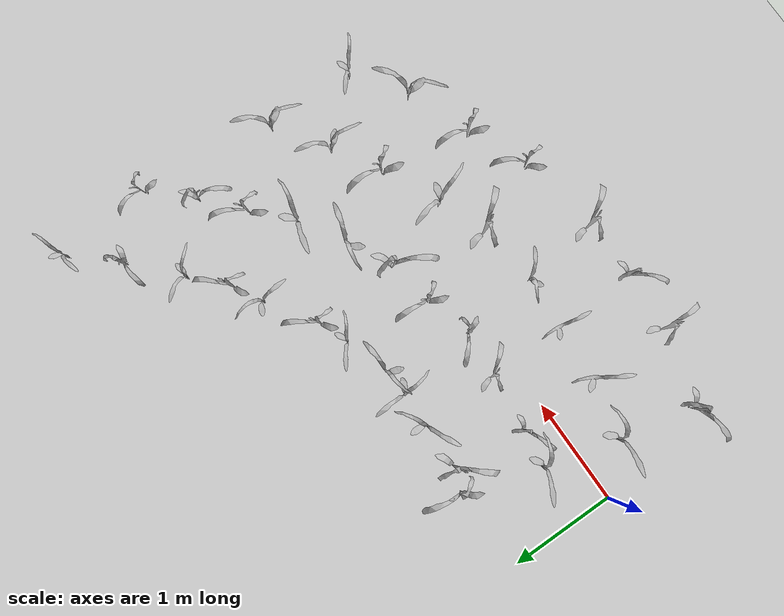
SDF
<sdf version="1.6">
 <world name="default">
  <model name="ground_plane">
   <static>1</static>
   <link name="link">
    <collision name="collision">
     <geometry><plane><normal>0 0 1</normal><size>100 100</size></plane></geometry>
     <surface>
      <contact><collide_bitmask>65535</collide_bitmask></contact>
      <friction><ode><mu>100</mu><mu2>50</mu2></ode></friction>
     </surface>
    </collision>
    <visual name="visual">
     <cast_shadows>0</cast_shadows>
     <geometry><plane><normal>0 0 1</normal><size>100 100</size></plane></geometry>
     <material>
      <script><uri>file://media/materials/scripts/gazebo.material</uri><name>Gazebo/Grey</name></script>
     </material>
    </visual>
   </link>
  </model>
  <model name="maize_02_0000">
   <pose>0.5852653367917549 0.3318975245804875 0.05 0 -0 4.819137196691981</pose>
   <link name="maize_02_0000_link">
    <inertial>
     <mass>5.0</mass>
     <inertia>
      <ixx>0.0033416667</ixx>
      <ixy>0</ixy>
      <ixz>0</ixz>
      <iyy>0.0033416667</iyy>
      <iyz>0</iyz>
      <izz>0.000016666667</izz>
     </inertia>
     <pose>0 0 0.1 0 0 0</pose>
    </inertial>
    <collision name="collision">
     <pose>0 0 0.2 0 -0 0</pose>
     <geometry><box><size>0.02 0.02 0.4</size></box></geometry>
     <surface><friction><ode><mu>10</mu><mu2>10</mu2></ode></friction></surface>
    </collision>
    <visual name="visual">
     <geometry>
      <mesh>
       <uri>model://maize_02/meshes/maize_02.dae</uri>
       <scale>0.6198655844902619 0.6198655844902619 0.6198655844902619</scale>
      </mesh>
     </geometry>
    </visual>
   </link>
  </model>
  <model name="maize_01_0001">
   <pose>0.819224740678983 1.0473308832072175 0.05 0 -0 2.1558350622808797</pose>
   <link name="maize_01_0001_link">
    <inertial>
     <mass>5.0</mass>
     <inertia>
      <ixx>0.0033416667</ixx>
      <ixy>0</ixy>
      <ixz>0</ixz>
      <iyy>0.0033416667</iyy>
      <iyz>0</iyz>
      <izz>0.000016666667</izz>
     </inertia>
     <pose>0 0 0.1 0 0 0</pose>
    </inertial>
    <collision name="collision">
     <pose>0 0 0.2 0 -0 0</pose>
     <geometry><box><size>0.02 0.02 0.4</size></box></geometry>
     <surface><friction><ode><mu>10</mu><mu2>10</mu2></ode></friction></surface>
    </collision>
    <visual name="visual">
     <geometry>
      <mesh>
       <uri>model://maize_01/meshes/maize_01.dae</uri>
       <scale>0.6231910097683236 0.6231910097683236 0.6231910097683236</scale>
      </mesh>
     </geometry>
    </visual>
   </link>
  </model>
  <model name="maize_02_0002">
   <pose>0.40558978321978284 -0.34852179317750154 0.05 0 -0 5.124807641884314</pose>
   <link name="maize_02_0002_link">
    <inertial>
     <mass>5.0</mass>
     <inertia>
      <ixx>0.0033416667</ixx>
      <ixy>0</ixy>
      <ixz>0</ixz>
      <iyy>0.0033416667</iyy>
      <iyz>0</iyz>
      <izz>0.000016666667</izz>
     </inertia>
     <pose>0 0 0.1 0 0 0</pose>
    </inertial>
    <collision name="collision">
     <pose>0 0 0.2 0 -0 0</pose>
     <geometry><box><size>0.02 0.02 0.4</size></box></geometry>
     <surface><friction><ode><mu>10</mu><mu2>10</mu2></ode></friction></surface>
    </collision>
    <visual name="visual">
     <geometry>
      <mesh>
       <uri>model://maize_02/meshes/maize_02.dae</uri>
       <scale>0.6528116234078092 0.6528116234078092 0.6528116234078092</scale>
      </mesh>
     </geometry>
    </visual>
   </link>
  </model>
  <model name="maize_01_0003">
   <pose>0.24168280885078264 -1.0580865629336622 0.05 0 -0 3.9816687229967505</pose>
   <link name="maize_01_0003_link">
    <inertial>
     <mass>5.0</mass>
     <inertia>
      <ixx>0.0033416667</ixx>
      <ixy>0</ixy>
      <ixz>0</ixz>
      <iyy>0.0033416667</iyy>
      <iyz>0</iyz>
      <izz>0.000016666667</izz>
     </inertia>
     <pose>0 0 0.1 0 0 0</pose>
    </inertial>
    <collision name="collision">
     <pose>0 0 0.2 0 -0 0</pose>
     <geometry><box><size>0.02 0.02 0.4</size></box></geometry>
     <surface><friction><ode><mu>10</mu><mu2>10</mu2></ode></friction></surface>
    </collision>
    <visual name="visual">
     <geometry>
      <mesh>
       <uri>model://maize_01/meshes/maize_01.dae</uri>
       <scale>0.6133527399428998 0.6133527399428998 0.6133527399428998</scale>
      </mesh>
     </geometry>
    </visual>
   </link>
  </model>
  <model name="maize_01_0004">
   <pose>0.9390161218849827 0.2778658560384204 0.05 0 -0 4.271016923427325</pose>
   <link name="maize_01_0004_link">
    <inertial>
     <mass>5.0</mass>
     <inertia>
      <ixx>0.0033416667</ixx>
      <ixy>0</ixy>
      <ixz>0</ixz>
      <iyy>0.0033416667</iyy>
      <iyz>0</iyz>
      <izz>0.000016666667</izz>
     </inertia>
     <pose>0 0 0.1 0 0 0</pose>
    </inertial>
    <collision name="collision">
     <pose>0 0 0.2 0 -0 0</pose>
     <geometry><box><size>0.02 0.02 0.4</size></box></geometry>
     <surface><friction><ode><mu>10</mu><mu2>10</mu2></ode></friction></surface>
    </collision>
    <visual name="visual">
     <geometry>
      <mesh>
       <uri>model://maize_01/meshes/maize_01.dae</uri>
       <scale>0.5013892831783784 0.5013892831783784 0.5013892831783784</scale>
      </mesh>
     </geometry>
    </visual>
   </link>
  </model>
  <model name="maize_01_0005">
   <pose>1.0433240931990193 0.9779338062818309 0.05 0 -0 4.773157440183226</pose>
   <link name="maize_01_0005_link">
    <inertial>
     <mass>5.0</mass>
     <inertia>
      <ixx>0.0033416667</ixx>
      <ixy>0</ixy>
      <ixz>0</ixz>
      <iyy>0.0033416667</iyy>
      <iyz>0</iyz>
      <izz>0.000016666667</izz>
     </inertia>
     <pose>0 0 0.1 0 0 0</pose>
    </inertial>
    <collision name="collision">
     <pose>0 0 0.2 0 -0 0</pose>
     <geometry><box><size>0.02 0.02 0.4</size></box></geometry>
     <surface><friction><ode><mu>10</mu><mu2>10</mu2></ode></friction></surface>
    </collision>
    <visual name="visual">
     <geometry>
      <mesh>
       <uri>model://maize_01/meshes/maize_01.dae</uri>
       <scale>0.6386361690071659 0.6386361690071659 0.6386361690071659</scale>
      </mesh>
     </geometry>
    </visual>
   </link>
  </model>
  <model name="maize_02_0006">
   <pose>0.9435436977935228 -0.5009072258348778 0.05 0 -0 0.07977521289463807</pose>
   <link name="maize_02_0006_link">
    <inertial>
     <mass>5.0</mass>
     <inertia>
      <ixx>0.0033416667</ixx>
      <ixy>0</ixy>
      <ixz>0</ixz>
      <iyy>0.0033416667</iyy>
      <iyz>0</iyz>
      <izz>0.000016666667</izz>
     </inertia>
     <pose>0 0 0.1 0 0 0</pose>
    </inertial>
    <collision name="collision">
     <pose>0 0 0.2 0 -0 0</pose>
     <geometry><box><size>0.02 0.02 0.4</size></box></geometry>
     <surface><friction><ode><mu>10</mu><mu2>10</mu2></ode></friction></surface>
    </collision>
    <visual name="visual">
     <geometry>
      <mesh>
       <uri>model://maize_02/meshes/maize_02.dae</uri>
       <scale>0.5684113326045124 0.5684113326045124 0.5684113326045124</scale>
      </mesh>
     </geometry>
    </visual>
   </link>
  </model>
  <model name="maize_01_0007">
   <pose>0.9520983835941816 -1.2447676150098879 0.05 0 -0 5.541592673597331</pose>
   <link name="maize_01_0007_link">
    <inertial>
     <mass>5.0</mass>
     <inertia>
      <ixx>0.0033416667</ixx>
      <ixy>0</ixy>
      <ixz>0</ixz>
      <iyy>0.0033416667</iyy>
      <iyz>0</iyz>
      <izz>0.000016666667</izz>
     </inertia>
     <pose>0 0 0.1 0 0 0</pose>
    </inertial>
    <collision name="collision">
     <pose>0 0 0.2 0 -0 0</pose>
     <geometry><box><size>0.02 0.02 0.4</size></box></geometry>
     <surface><friction><ode><mu>10</mu><mu2>10</mu2></ode></friction></surface>
    </collision>
    <visual name="visual">
     <geometry>
      <mesh>
       <uri>model://maize_01/meshes/maize_01.dae</uri>
       <scale>0.5812379114549232 0.5812379114549232 0.5812379114549232</scale>
      </mesh>
     </geometry>
    </visual>
   </link>
  </model>
  <model name="maize_01_0008">
   <pose>1.4710803604021425 0.251955824354667 0.05 0 -0 6.238931316800727</pose>
   <link name="maize_01_0008_link">
    <inertial>
     <mass>5.0</mass>
     <inertia>
      <ixx>0.0033416667</ixx>
      <ixy>0</ixy>
      <ixz>0</ixz>
      <iyy>0.0033416667</iyy>
      <iyz>0</iyz>
      <izz>0.000016666667</izz>
     </inertia>
     <pose>0 0 0.1 0 0 0</pose>
    </inertial>
    <collision name="collision">
     <pose>0 0 0.2 0 -0 0</pose>
     <geometry><box><size>0.02 0.02 0.4</size></box></geometry>
     <surface><friction><ode><mu>10</mu><mu2>10</mu2></ode></friction></surface>
    </collision>
    <visual name="visual">
     <geometry>
      <mesh>
       <uri>model://maize_01/meshes/maize_01.dae</uri>
       <scale>0.5223644311173579 0.5223644311173579 0.5223644311173579</scale>
      </mesh>
     </geometry>
    </visual>
   </link>
  </model>
  <model name="maize_02_0009">
   <pose>1.4540257556802145 0.9679712613130649 0.05 0 -0 5.768217206137263</pose>
   <link name="maize_02_0009_link">
    <inertial>
     <mass>5.0</mass>
     <inertia>
      <ixx>0.0033416667</ixx>
      <ixy>0</ixy>
      <ixz>0</ixz>
      <iyy>0.0033416667</iyy>
      <iyz>0</iyz>
      <izz>0.000016666667</izz>
     </inertia>
     <pose>0 0 0.1 0 0 0</pose>
    </inertial>
    <collision name="collision">
     <pose>0 0 0.2 0 -0 0</pose>
     <geometry><box><size>0.02 0.02 0.4</size></box></geometry>
     <surface><friction><ode><mu>10</mu><mu2>10</mu2></ode></friction></surface>
    </collision>
    <visual name="visual">
     <geometry>
      <mesh>
       <uri>model://maize_02/meshes/maize_02.dae</uri>
       <scale>0.6155631847034542 0.6155631847034542 0.6155631847034542</scale>
      </mesh>
     </geometry>
    </visual>
   </link>
  </model>
  <model name="maize_02_0010">
   <pose>1.4918015879454176 -0.5199005328881918 0.05 0 -0 0.46721395192465426</pose>
   <link name="maize_02_0010_link">
    <inertial>
     <mass>5.0</mass>
     <inertia>
      <ixx>0.0033416667</ixx>
      <ixy>0</ixy>
      <ixz>0</ixz>
      <iyy>0.0033416667</iyy>
      <iyz>0</iyz>
      <izz>0.000016666667</izz>
     </inertia>
     <pose>0 0 0.1 0 0 0</pose>
    </inertial>
    <collision name="collision">
     <pose>0 0 0.2 0 -0 0</pose>
     <geometry><box><size>0.02 0.02 0.4</size></box></geometry>
     <surface><friction><ode><mu>10</mu><mu2>10</mu2></ode></friction></surface>
    </collision>
    <visual name="visual">
     <geometry>
      <mesh>
       <uri>model://maize_02/meshes/maize_02.dae</uri>
       <scale>0.5000797023428499 0.5000797023428499 0.5000797023428499</scale>
      </mesh>
     </geometry>
    </visual>
   </link>
  </model>
  <model name="maize_01_0011">
   <pose>1.515319801560635 -1.2987714635864087 0.05 0 -0 4.596360872219469</pose>
   <link name="maize_01_0011_link">
    <inertial>
     <mass>5.0</mass>
     <inertia>
      <ixx>0.0033416667</ixx>
      <ixy>0</ixy>
      <ixz>0</ixz>
      <iyy>0.0033416667</iyy>
      <iyz>0</iyz>
      <izz>0.000016666667</izz>
     </inertia>
     <pose>0 0 0.1 0 0 0</pose>
    </inertial>
    <collision name="collision">
     <pose>0 0 0.2 0 -0 0</pose>
     <geometry><box><size>0.02 0.02 0.4</size></box></geometry>
     <surface><friction><ode><mu>10</mu><mu2>10</mu2></ode></friction></surface>
    </collision>
    <visual name="visual">
     <geometry>
      <mesh>
       <uri>model://maize_01/meshes/maize_01.dae</uri>
       <scale>0.5441755178383955 0.5441755178383955 0.5441755178383955</scale>
      </mesh>
     </geometry>
    </visual>
   </link>
  </model>
  <model name="maize_01_0012">
   <pose>1.9238771021630594 0.1877942131749205 0.05 0 -0 3.1945023329080233</pose>
   <link name="maize_01_0012_link">
    <inertial>
     <mass>5.0</mass>
     <inertia>
      <ixx>0.0033416667</ixx>
      <ixy>0</ixy>
      <ixz>0</ixz>
      <iyy>0.0033416667</iyy>
      <iyz>0</iyz>
      <izz>0.000016666667</izz>
     </inertia>
     <pose>0 0 0.1 0 0 0</pose>
    </inertial>
    <collision name="collision">
     <pose>0 0 0.2 0 -0 0</pose>
     <geometry><box><size>0.02 0.02 0.4</size></box></geometry>
     <surface><friction><ode><mu>10</mu><mu2>10</mu2></ode></friction></surface>
    </collision>
    <visual name="visual">
     <geometry>
      <mesh>
       <uri>model://maize_01/meshes/maize_01.dae</uri>
       <scale>0.5189079695927395 0.5189079695927395 0.5189079695927395</scale>
      </mesh>
     </geometry>
    </visual>
   </link>
  </model>
  <model name="maize_02_0013">
   <pose>1.796037262723127 0.9823309842579532 0.05 0 -0 3.8167087248394163</pose>
   <link name="maize_02_0013_link">
    <inertial>
     <mass>5.0</mass>
     <inertia>
      <ixx>0.0033416667</ixx>
      <ixy>0</ixy>
      <ixz>0</ixz>
      <iyy>0.0033416667</iyy>
      <iyz>0</iyz>
      <izz>0.000016666667</izz>
     </inertia>
     <pose>0 0 0.1 0 0 0</pose>
    </inertial>
    <collision name="collision">
     <pose>0 0 0.2 0 -0 0</pose>
     <geometry><box><size>0.02 0.02 0.4</size></box></geometry>
     <surface><friction><ode><mu>10</mu><mu2>10</mu2></ode></friction></surface>
    </collision>
    <visual name="visual">
     <geometry>
      <mesh>
       <uri>model://maize_02/meshes/maize_02.dae</uri>
       <scale>0.5849789956032055 0.5849789956032055 0.5849789956032055</scale>
      </mesh>
     </geometry>
    </visual>
   </link>
  </model>
  <model name="maize_02_0014">
   <pose>1.9917397850975298 -0.5538407257475357 0.05 0 -0 1.556746249958554</pose>
   <link name="maize_02_0014_link">
    <inertial>
     <mass>5.0</mass>
     <inertia>
      <ixx>0.0033416667</ixx>
      <ixy>0</ixy>
      <ixz>0</ixz>
      <iyy>0.0033416667</iyy>
      <iyz>0</iyz>
      <izz>0.000016666667</izz>
     </inertia>
     <pose>0 0 0.1 0 0 0</pose>
    </inertial>
    <collision name="collision">
     <pose>0 0 0.2 0 -0 0</pose>
     <geometry><box><size>0.02 0.02 0.4</size></box></geometry>
     <surface><friction><ode><mu>10</mu><mu2>10</mu2></ode></friction></surface>
    </collision>
    <visual name="visual">
     <geometry>
      <mesh>
       <uri>model://maize_02/meshes/maize_02.dae</uri>
       <scale>0.5020388727855789 0.5020388727855789 0.5020388727855789</scale>
      </mesh>
     </geometry>
    </visual>
   </link>
  </model>
  <model name="maize_01_0015">
   <pose>2.0702681742821123 -1.236859452738148 0.05 0 -0 6.171946836271607</pose>
   <link name="maize_01_0015_link">
    <inertial>
     <mass>5.0</mass>
     <inertia>
      <ixx>0.0033416667</ixx>
      <ixy>0</ixy>
      <ixz>0</ixz>
      <iyy>0.0033416667</iyy>
      <iyz>0</iyz>
      <izz>0.000016666667</izz>
     </inertia>
     <pose>0 0 0.1 0 0 0</pose>
    </inertial>
    <collision name="collision">
     <pose>0 0 0.2 0 -0 0</pose>
     <geometry><box><size>0.02 0.02 0.4</size></box></geometry>
     <surface><friction><ode><mu>10</mu><mu2>10</mu2></ode></friction></surface>
    </collision>
    <visual name="visual">
     <geometry>
      <mesh>
       <uri>model://maize_01/meshes/maize_01.dae</uri>
       <scale>0.6263677373690738 0.6263677373690738 0.6263677373690738</scale>
      </mesh>
     </geometry>
    </visual>
   </link>
  </model>
  <model name="maize_01_0016">
   <pose>2.3523107436248694 0.314003701111601 0.05 0 -0 2.3253177278490385</pose>
   <link name="maize_01_0016_link">
    <inertial>
     <mass>5.0</mass>
     <inertia>
      <ixx>0.0033416667</ixx>
      <ixy>0</ixy>
      <ixz>0</ixz>
      <iyy>0.0033416667</iyy>
      <iyz>0</iyz>
      <izz>0.000016666667</izz>
     </inertia>
     <pose>0 0 0.1 0 0 0</pose>
    </inertial>
    <collision name="collision">
     <pose>0 0 0.2 0 -0 0</pose>
     <geometry><box><size>0.02 0.02 0.4</size></box></geometry>
     <surface><friction><ode><mu>10</mu><mu2>10</mu2></ode></friction></surface>
    </collision>
    <visual name="visual">
     <geometry>
      <mesh>
       <uri>model://maize_01/meshes/maize_01.dae</uri>
       <scale>0.5847231730509037 0.5847231730509037 0.5847231730509037</scale>
      </mesh>
     </geometry>
    </visual>
   </link>
  </model>
  <model name="maize_02_0017">
   <pose>2.0594638042464877 0.9808779157767082 0.05 0 -0 2.268823572105541</pose>
   <link name="maize_02_0017_link">
    <inertial>
     <mass>5.0</mass>
     <inertia>
      <ixx>0.0033416667</ixx>
      <ixy>0</ixy>
      <ixz>0</ixz>
      <iyy>0.0033416667</iyy>
      <iyz>0</iyz>
      <izz>0.000016666667</izz>
     </inertia>
     <pose>0 0 0.1 0 0 0</pose>
    </inertial>
    <collision name="collision">
     <pose>0 0 0.2 0 -0 0</pose>
     <geometry><box><size>0.02 0.02 0.4</size></box></geometry>
     <surface><friction><ode><mu>10</mu><mu2>10</mu2></ode></friction></surface>
    </collision>
    <visual name="visual">
     <geometry>
      <mesh>
       <uri>model://maize_02/meshes/maize_02.dae</uri>
       <scale>0.5988593081619046 0.5988593081619046 0.5988593081619046</scale>
      </mesh>
     </geometry>
    </visual>
   </link>
  </model>
  <model name="maize_01_0018">
   <pose>2.563373309769741 -0.43797303256134 0.05 0 -0 6.221016702236848</pose>
   <link name="maize_01_0018_link">
    <inertial>
     <mass>5.0</mass>
     <inertia>
      <ixx>0.0033416667</ixx>
      <ixy>0</ixy>
      <ixz>0</ixz>
      <iyy>0.0033416667</iyy>
      <iyz>0</iyz>
      <izz>0.000016666667</izz>
     </inertia>
     <pose>0 0 0.1 0 0 0</pose>
    </inertial>
    <collision name="collision">
     <pose>0 0 0.2 0 -0 0</pose>
     <geometry><box><size>0.02 0.02 0.4</size></box></geometry>
     <surface><friction><ode><mu>10</mu><mu2>10</mu2></ode></friction></surface>
    </collision>
    <visual name="visual">
     <geometry>
      <mesh>
       <uri>model://maize_01/meshes/maize_01.dae</uri>
       <scale>0.674993146854803 0.674993146854803 0.674993146854803</scale>
      </mesh>
     </geometry>
    </visual>
   </link>
  </model>
  <model name="maize_01_0019">
   <pose>2.861835509038293 -1.141784677089345 0.05 0 -0 1.873990965419019</pose>
   <link name="maize_01_0019_link">
    <inertial>
     <mass>5.0</mass>
     <inertia>
      <ixx>0.0033416667</ixx>
      <ixy>0</ixy>
      <ixz>0</ixz>
      <iyy>0.0033416667</iyy>
      <iyz>0</iyz>
      <izz>0.000016666667</izz>
     </inertia>
     <pose>0 0 0.1 0 0 0</pose>
    </inertial>
    <collision name="collision">
     <pose>0 0 0.2 0 -0 0</pose>
     <geometry><box><size>0.02 0.02 0.4</size></box></geometry>
     <surface><friction><ode><mu>10</mu><mu2>10</mu2></ode></friction></surface>
    </collision>
    <visual name="visual">
     <geometry>
      <mesh>
       <uri>model://maize_01/meshes/maize_01.dae</uri>
       <scale>0.5777262842857496 0.5777262842857496 0.5777262842857496</scale>
      </mesh>
     </geometry>
    </visual>
   </link>
  </model>
  <model name="maize_01_0020">
   <pose>2.7974986973740203 0.3984434908552974 0.05 0 -0 4.967490776944291</pose>
   <link name="maize_01_0020_link">
    <inertial>
     <mass>5.0</mass>
     <inertia>
      <ixx>0.0033416667</ixx>
      <ixy>0</ixy>
      <ixz>0</ixz>
      <iyy>0.0033416667</iyy>
      <iyz>0</iyz>
      <izz>0.000016666667</izz>
     </inertia>
     <pose>0 0 0.1 0 0 0</pose>
    </inertial>
    <collision name="collision">
     <pose>0 0 0.2 0 -0 0</pose>
     <geometry><box><size>0.02 0.02 0.4</size></box></geometry>
     <surface><friction><ode><mu>10</mu><mu2>10</mu2></ode></friction></surface>
    </collision>
    <visual name="visual">
     <geometry>
      <mesh>
       <uri>model://maize_01/meshes/maize_01.dae</uri>
       <scale>0.6812627631122814 0.6812627631122814 0.6812627631122814</scale>
      </mesh>
     </geometry>
    </visual>
   </link>
  </model>
  <model name="maize_02_0021">
   <pose>2.460382011911631 1.121799512558572 0.05 0 -0 4.7214015216645375</pose>
   <link name="maize_02_0021_link">
    <inertial>
     <mass>5.0</mass>
     <inertia>
      <ixx>0.0033416667</ixx>
      <ixy>0</ixy>
      <ixz>0</ixz>
      <iyy>0.0033416667</iyy>
      <iyz>0</iyz>
      <izz>0.000016666667</izz>
     </inertia>
     <pose>0 0 0.1 0 0 0</pose>
    </inertial>
    <collision name="collision">
     <pose>0 0 0.2 0 -0 0</pose>
     <geometry><box><size>0.02 0.02 0.4</size></box></geometry>
     <surface><friction><ode><mu>10</mu><mu2>10</mu2></ode></friction></surface>
    </collision>
    <visual name="visual">
     <geometry>
      <mesh>
       <uri>model://maize_02/meshes/maize_02.dae</uri>
       <scale>0.5156354718797089 0.5156354718797089 0.5156354718797089</scale>
      </mesh>
     </geometry>
    </visual>
   </link>
  </model>
  <model name="maize_02_0022">
   <pose>3.0237332085631774 -0.27581309665760934 0.05 0 -0 4.012740057833342</pose>
   <link name="maize_02_0022_link">
    <inertial>
     <mass>5.0</mass>
     <inertia>
      <ixx>0.0033416667</ixx>
      <ixy>0</ixy>
      <ixz>0</ixz>
      <iyy>0.0033416667</iyy>
      <iyz>0</iyz>
      <izz>0.000016666667</izz>
     </inertia>
     <pose>0 0 0.1 0 0 0</pose>
    </inertial>
    <collision name="collision">
     <pose>0 0 0.2 0 -0 0</pose>
     <geometry><box><size>0.02 0.02 0.4</size></box></geometry>
     <surface><friction><ode><mu>10</mu><mu2>10</mu2></ode></friction></surface>
    </collision>
    <visual name="visual">
     <geometry>
      <mesh>
       <uri>model://maize_02/meshes/maize_02.dae</uri>
       <scale>0.657859032380797 0.657859032380797 0.657859032380797</scale>
      </mesh>
     </geometry>
    </visual>
   </link>
  </model>
  <model name="maize_01_0023">
   <pose>3.4111367063759492 -0.8863992666368435 0.05 0 -0 2.2832807923442737</pose>
   <link name="maize_01_0023_link">
    <inertial>
     <mass>5.0</mass>
     <inertia>
      <ixx>0.0033416667</ixx>
      <ixy>0</ixy>
      <ixz>0</ixz>
      <iyy>0.0033416667</iyy>
      <iyz>0</iyz>
      <izz>0.000016666667</izz>
     </inertia>
     <pose>0 0 0.1 0 0 0</pose>
    </inertial>
    <collision name="collision">
     <pose>0 0 0.2 0 -0 0</pose>
     <geometry><box><size>0.02 0.02 0.4</size></box></geometry>
     <surface><friction><ode><mu>10</mu><mu2>10</mu2></ode></friction></surface>
    </collision>
    <visual name="visual">
     <geometry>
      <mesh>
       <uri>model://maize_01/meshes/maize_01.dae</uri>
       <scale>0.599202152196202 0.599202152196202 0.599202152196202</scale>
      </mesh>
     </geometry>
    </visual>
   </link>
  </model>
  <model name="maize_02_0024">
   <pose>3.187744665740914 0.6193244460786459 0.05 0 -0 1.915602899776297</pose>
   <link name="maize_02_0024_link">
    <inertial>
     <mass>5.0</mass>
     <inertia>
      <ixx>0.0033416667</ixx>
      <ixy>0</ixy>
      <ixz>0</ixz>
      <iyy>0.0033416667</iyy>
      <iyz>0</iyz>
      <izz>0.000016666667</izz>
     </inertia>
     <pose>0 0 0.1 0 0 0</pose>
    </inertial>
    <collision name="collision">
     <pose>0 0 0.2 0 -0 0</pose>
     <geometry><box><size>0.02 0.02 0.4</size></box></geometry>
     <surface><friction><ode><mu>10</mu><mu2>10</mu2></ode></friction></surface>
    </collision>
    <visual name="visual">
     <geometry>
      <mesh>
       <uri>model://maize_02/meshes/maize_02.dae</uri>
       <scale>0.6491385240156974 0.6491385240156974 0.6491385240156974</scale>
      </mesh>
     </geometry>
    </visual>
   </link>
  </model>
  <model name="maize_01_0025">
   <pose>2.7381442768128883 1.2120958748460364 0.05 0 -0 1.823986729176547</pose>
   <link name="maize_01_0025_link">
    <inertial>
     <mass>5.0</mass>
     <inertia>
      <ixx>0.0033416667</ixx>
      <ixy>0</ixy>
      <ixz>0</ixz>
      <iyy>0.0033416667</iyy>
      <iyz>0</iyz>
      <izz>0.000016666667</izz>
     </inertia>
     <pose>0 0 0.1 0 0 0</pose>
    </inertial>
    <collision name="collision">
     <pose>0 0 0.2 0 -0 0</pose>
     <geometry><box><size>0.02 0.02 0.4</size></box></geometry>
     <surface><friction><ode><mu>10</mu><mu2>10</mu2></ode></friction></surface>
    </collision>
    <visual name="visual">
     <geometry>
      <mesh>
       <uri>model://maize_01/meshes/maize_01.dae</uri>
       <scale>0.5687859275631976 0.5687859275631976 0.5687859275631976</scale>
      </mesh>
     </geometry>
    </visual>
   </link>
  </model>
  <model name="maize_01_0026">
   <pose>3.5622430096199165 -0.030292088759010113 0.05 0 -0 2.3895884762900703</pose>
   <link name="maize_01_0026_link">
    <inertial>
     <mass>5.0</mass>
     <inertia>
      <ixx>0.0033416667</ixx>
      <ixy>0</ixy>
      <ixz>0</ixz>
      <iyy>0.0033416667</iyy>
      <iyz>0</iyz>
      <izz>0.000016666667</izz>
     </inertia>
     <pose>0 0 0.1 0 0 0</pose>
    </inertial>
    <collision name="collision">
     <pose>0 0 0.2 0 -0 0</pose>
     <geometry><box><size>0.02 0.02 0.4</size></box></geometry>
     <surface><friction><ode><mu>10</mu><mu2>10</mu2></ode></friction></surface>
    </collision>
    <visual name="visual">
     <geometry>
      <mesh>
       <uri>model://maize_01/meshes/maize_01.dae</uri>
       <scale>0.651003261346263 0.651003261346263 0.651003261346263</scale>
      </mesh>
     </geometry>
    </visual>
   </link>
  </model>
  <model name="maize_02_0027">
   <pose>4.024046199321598 -0.6432361299946997 0.05 0 -0 2.7971562792821607</pose>
   <link name="maize_02_0027_link">
    <inertial>
     <mass>5.0</mass>
     <inertia>
      <ixx>0.0033416667</ixx>
      <ixy>0</ixy>
      <ixz>0</ixz>
      <iyy>0.0033416667</iyy>
      <iyz>0</iyz>
      <izz>0.000016666667</izz>
     </inertia>
     <pose>0 0 0.1 0 0 0</pose>
    </inertial>
    <collision name="collision">
     <pose>0 0 0.2 0 -0 0</pose>
     <geometry><box><size>0.02 0.02 0.4</size></box></geometry>
     <surface><friction><ode><mu>10</mu><mu2>10</mu2></ode></friction></surface>
    </collision>
    <visual name="visual">
     <geometry>
      <mesh>
       <uri>model://maize_02/meshes/maize_02.dae</uri>
       <scale>0.6805788621275966 0.6805788621275966 0.6805788621275966</scale>
      </mesh>
     </geometry>
    </visual>
   </link>
  </model>
  <model name="maize_02_0028">
   <pose>3.592722145805524 0.8710600447686613 0.05 0 -0 5.066617296605854</pose>
   <link name="maize_02_0028_link">
    <inertial>
     <mass>5.0</mass>
     <inertia>
      <ixx>0.0033416667</ixx>
      <ixy>0</ixy>
      <ixz>0</ixz>
      <iyy>0.0033416667</iyy>
      <iyz>0</iyz>
      <izz>0.000016666667</izz>
     </inertia>
     <pose>0 0 0.1 0 0 0</pose>
    </inertial>
    <collision name="collision">
     <pose>0 0 0.2 0 -0 0</pose>
     <geometry><box><size>0.02 0.02 0.4</size></box></geometry>
     <surface><friction><ode><mu>10</mu><mu2>10</mu2></ode></friction></surface>
    </collision>
    <visual name="visual">
     <geometry>
      <mesh>
       <uri>model://maize_02/meshes/maize_02.dae</uri>
       <scale>0.6786293050277437 0.6786293050277437 0.6786293050277437</scale>
      </mesh>
     </geometry>
    </visual>
   </link>
  </model>
  <model name="maize_02_0029">
   <pose>3.1907145028444757 1.527890867731571 0.05 0 -0 0.6625776207973766</pose>
   <link name="maize_02_0029_link">
    <inertial>
     <mass>5.0</mass>
     <inertia>
      <ixx>0.0033416667</ixx>
      <ixy>0</ixy>
      <ixz>0</ixz>
      <iyy>0.0033416667</iyy>
      <iyz>0</iyz>
      <izz>0.000016666667</izz>
     </inertia>
     <pose>0 0 0.1 0 0 0</pose>
    </inertial>
    <collision name="collision">
     <pose>0 0 0.2 0 -0 0</pose>
     <geometry><box><size>0.02 0.02 0.4</size></box></geometry>
     <surface><friction><ode><mu>10</mu><mu2>10</mu2></ode></friction></surface>
    </collision>
    <visual name="visual">
     <geometry>
      <mesh>
       <uri>model://maize_02/meshes/maize_02.dae</uri>
       <scale>0.5414249144522247 0.5414249144522247 0.5414249144522247</scale>
      </mesh>
     </geometry>
    </visual>
   </link>
  </model>
  <model name="maize_02_0030">
   <pose>4.0045292279793445 0.2382221796570852 0.05 0 -0 3.4805201987972127</pose>
   <link name="maize_02_0030_link">
    <inertial>
     <mass>5.0</mass>
     <inertia>
      <ixx>0.0033416667</ixx>
      <ixy>0</ixy>
      <ixz>0</ixz>
      <iyy>0.0033416667</iyy>
      <iyz>0</iyz>
      <izz>0.000016666667</izz>
     </inertia>
     <pose>0 0 0.1 0 0 0</pose>
    </inertial>
    <collision name="collision">
     <pose>0 0 0.2 0 -0 0</pose>
     <geometry><box><size>0.02 0.02 0.4</size></box></geometry>
     <surface><friction><ode><mu>10</mu><mu2>10</mu2></ode></friction></surface>
    </collision>
    <visual name="visual">
     <geometry>
      <mesh>
       <uri>model://maize_02/meshes/maize_02.dae</uri>
       <scale>0.6182009282914313 0.6182009282914313 0.6182009282914313</scale>
      </mesh>
     </geometry>
    </visual>
   </link>
  </model>
  <model name="maize_02_0031">
   <pose>4.4973108184964 -0.3032836574257594 0.05 0 -0 4.622835124000114</pose>
   <link name="maize_02_0031_link">
    <inertial>
     <mass>5.0</mass>
     <inertia>
      <ixx>0.0033416667</ixx>
      <ixy>0</ixy>
      <ixz>0</ixz>
      <iyy>0.0033416667</iyy>
      <iyz>0</iyz>
      <izz>0.000016666667</izz>
     </inertia>
     <pose>0 0 0.1 0 0 0</pose>
    </inertial>
    <collision name="collision">
     <pose>0 0 0.2 0 -0 0</pose>
     <geometry><box><size>0.02 0.02 0.4</size></box></geometry>
     <surface><friction><ode><mu>10</mu><mu2>10</mu2></ode></friction></surface>
    </collision>
    <visual name="visual">
     <geometry>
      <mesh>
       <uri>model://maize_02/meshes/maize_02.dae</uri>
       <scale>0.5380292373040949 0.5380292373040949 0.5380292373040949</scale>
      </mesh>
     </geometry>
    </visual>
   </link>
  </model>
  <model name="maize_01_0032">
   <pose>3.9420037278024034 1.170057710798335 0.05 0 -0 2.0346655031060488</pose>
   <link name="maize_01_0032_link">
    <inertial>
     <mass>5.0</mass>
     <inertia>
      <ixx>0.0033416667</ixx>
      <ixy>0</ixy>
      <ixz>0</ixz>
      <iyy>0.0033416667</iyy>
      <iyz>0</iyz>
      <izz>0.000016666667</izz>
     </inertia>
     <pose>0 0 0.1 0 0 0</pose>
    </inertial>
    <collision name="collision">
     <pose>0 0 0.2 0 -0 0</pose>
     <geometry><box><size>0.02 0.02 0.4</size></box></geometry>
     <surface><friction><ode><mu>10</mu><mu2>10</mu2></ode></friction></surface>
    </collision>
    <visual name="visual">
     <geometry>
      <mesh>
       <uri>model://maize_01/meshes/maize_01.dae</uri>
       <scale>0.5969374568946713 0.5969374568946713 0.5969374568946713</scale>
      </mesh>
     </geometry>
    </visual>
   </link>
  </model>
  <model name="maize_01_0033">
   <pose>3.454893269396232 1.6676647118103094 0.05 0 -0 1.6541569770463145</pose>
   <link name="maize_01_0033_link">
    <inertial>
     <mass>5.0</mass>
     <inertia>
      <ixx>0.0033416667</ixx>
      <ixy>0</ixy>
      <ixz>0</ixz>
      <iyy>0.0033416667</iyy>
      <iyz>0</iyz>
      <izz>0.000016666667</izz>
     </inertia>
     <pose>0 0 0.1 0 0 0</pose>
    </inertial>
    <collision name="collision">
     <pose>0 0 0.2 0 -0 0</pose>
     <geometry><box><size>0.02 0.02 0.4</size></box></geometry>
     <surface><friction><ode><mu>10</mu><mu2>10</mu2></ode></friction></surface>
    </collision>
    <visual name="visual">
     <geometry>
      <mesh>
       <uri>model://maize_01/meshes/maize_01.dae</uri>
       <scale>0.5715888245469294 0.5715888245469294 0.5715888245469294</scale>
      </mesh>
     </geometry>
    </visual>
   </link>
  </model>
  <model name="maize_02_0034">
   <pose>4.493978532254982 0.5687133431955295 0.05 0 -0 3.310158454012028</pose>
   <link name="maize_02_0034_link">
    <inertial>
     <mass>5.0</mass>
     <inertia>
      <ixx>0.0033416667</ixx>
      <ixy>0</ixy>
      <ixz>0</ixz>
      <iyy>0.0033416667</iyy>
      <iyz>0</iyz>
      <izz>0.000016666667</izz>
     </inertia>
     <pose>0 0 0.1 0 0 0</pose>
    </inertial>
    <collision name="collision">
     <pose>0 0 0.2 0 -0 0</pose>
     <geometry><box><size>0.02 0.02 0.4</size></box></geometry>
     <surface><friction><ode><mu>10</mu><mu2>10</mu2></ode></friction></surface>
    </collision>
    <visual name="visual">
     <geometry>
      <mesh>
       <uri>model://maize_02/meshes/maize_02.dae</uri>
       <scale>0.6318200602071443 0.6318200602071443 0.6318200602071443</scale>
      </mesh>
     </geometry>
    </visual>
   </link>
  </model>
  <model name="maize_01_0036">
   <pose>4.3148591834196885 1.4918823057127428 0.05 0 -0 5.05493490906569</pose>
   <link name="maize_01_0036_link">
    <inertial>
     <mass>5.0</mass>
     <inertia>
      <ixx>0.0033416667</ixx>
      <ixy>0</ixy>
      <ixz>0</ixz>
      <iyy>0.0033416667</iyy>
      <iyz>0</iyz>
      <izz>0.000016666667</izz>
     </inertia>
     <pose>0 0 0.1 0 0 0</pose>
    </inertial>
    <collision name="collision">
     <pose>0 0 0.2 0 -0 0</pose>
     <geometry><box><size>0.02 0.02 0.4</size></box></geometry>
     <surface><friction><ode><mu>10</mu><mu2>10</mu2></ode></friction></surface>
    </collision>
    <visual name="visual">
     <geometry>
      <mesh>
       <uri>model://maize_01/meshes/maize_01.dae</uri>
       <scale>0.544941818844956 0.544941818844956 0.544941818844956</scale>
      </mesh>
     </geometry>
    </visual>
   </link>
  </model>
  <model name="maize_02_0037">
   <pose>3.7739756360675063 1.9755584172197045 0.05 0 -0 4.385687013479581</pose>
   <link name="maize_02_0037_link">
    <inertial>
     <mass>5.0</mass>
     <inertia>
      <ixx>0.0033416667</ixx>
      <ixy>0</ixy>
      <ixz>0</ixz>
      <iyy>0.0033416667</iyy>
      <iyz>0</iyz>
      <izz>0.000016666667</izz>
     </inertia>
     <pose>0 0 0.1 0 0 0</pose>
    </inertial>
    <collision name="collision">
     <pose>0 0 0.2 0 -0 0</pose>
     <geometry><box><size>0.02 0.02 0.4</size></box></geometry>
     <surface><friction><ode><mu>10</mu><mu2>10</mu2></ode></friction></surface>
    </collision>
    <visual name="visual">
     <geometry>
      <mesh>
       <uri>model://maize_02/meshes/maize_02.dae</uri>
       <scale>0.5224339947913583 0.5224339947913583 0.5224339947913583</scale>
      </mesh>
     </geometry>
    </visual>
   </link>
  </model>
  <model name="maize_01_0040">
   <pose>4.659788214405235 1.8542710716031015 0.05 0 -0 2.712894728008688</pose>
   <link name="maize_01_0040_link">
    <inertial>
     <mass>5.0</mass>
     <inertia>
      <ixx>0.0033416667</ixx>
      <ixy>0</ixy>
      <ixz>0</ixz>
      <iyy>0.0033416667</iyy>
      <iyz>0</iyz>
      <izz>0.000016666667</izz>
     </inertia>
     <pose>0 0 0.1 0 0 0</pose>
    </inertial>
    <collision name="collision">
     <pose>0 0 0.2 0 -0 0</pose>
     <geometry><box><size>0.02 0.02 0.4</size></box></geometry>
     <surface><friction><ode><mu>10</mu><mu2>10</mu2></ode></friction></surface>
    </collision>
    <visual name="visual">
     <geometry>
      <mesh>
       <uri>model://maize_01/meshes/maize_01.dae</uri>
       <scale>0.5076031972194002 0.5076031972194002 0.5076031972194002</scale>
      </mesh>
     </geometry>
    </visual>
   </link>
  </model>
  <model name="maize_01_0041">
   <pose>4.201764465307277 2.3593396496737524 0.05 0 -0 4.082646239909758</pose>
   <link name="maize_01_0041_link">
    <inertial>
     <mass>5.0</mass>
     <inertia>
      <ixx>0.0033416667</ixx>
      <ixy>0</ixy>
      <ixz>0</ixz>
      <iyy>0.0033416667</iyy>
      <iyz>0</iyz>
      <izz>0.000016666667</izz>
     </inertia>
     <pose>0 0 0.1 0 0 0</pose>
    </inertial>
    <collision name="collision">
     <pose>0 0 0.2 0 -0 0</pose>
     <geometry><box><size>0.02 0.02 0.4</size></box></geometry>
     <surface><friction><ode><mu>10</mu><mu2>10</mu2></ode></friction></surface>
    </collision>
    <visual name="visual">
     <geometry>
      <mesh>
       <uri>model://maize_01/meshes/maize_01.dae</uri>
       <scale>0.5143097709367056 0.5143097709367056 0.5143097709367056</scale>
      </mesh>
     </geometry>
    </visual>
   </link>
  </model>
  <model name="maize_02_0045">
   <pose>4.555713077663286 2.7592589839605473 0.05 0 -0 5.552220991843271</pose>
   <link name="maize_02_0045_link">
    <inertial>
     <mass>5.0</mass>
     <inertia>
      <ixx>0.0033416667</ixx>
      <ixy>0</ixy>
      <ixz>0</ixz>
      <iyy>0.0033416667</iyy>
      <iyz>0</iyz>
      <izz>0.000016666667</izz>
     </inertia>
     <pose>0 0 0.1 0 0 0</pose>
    </inertial>
    <collision name="collision">
     <pose>0 0 0.2 0 -0 0</pose>
     <geometry><box><size>0.02 0.02 0.4</size></box></geometry>
     <surface><friction><ode><mu>10</mu><mu2>10</mu2></ode></friction></surface>
    </collision>
    <visual name="visual">
     <geometry>
      <mesh>
       <uri>model://maize_02/meshes/maize_02.dae</uri>
       <scale>0.5064394751453012 0.5064394751453012 0.5064394751453012</scale>
      </mesh>
     </geometry>
    </visual>
   </link>
  </model>
 </world>
</sdf>
